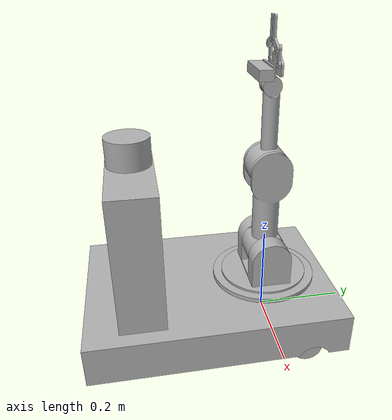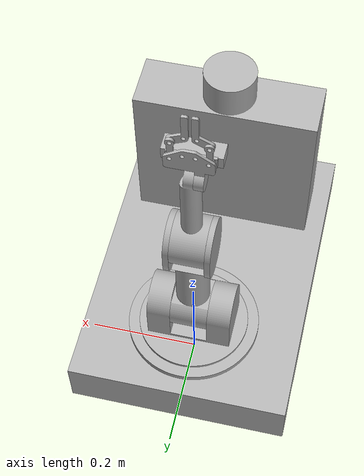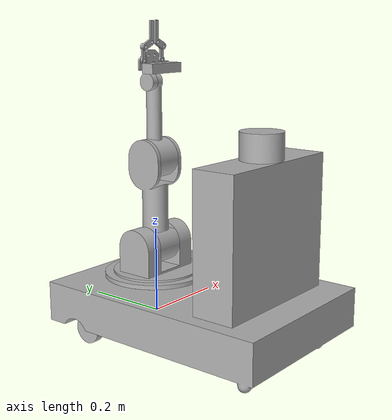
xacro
<?xml version="1.0"?>
<robot xmlns:xacro="http://www.ros.org/wiki/xacro" name="capstone_design">
    <xacro:arg name="initial_positions_file" default="initial_positions.yaml" />

    <!-- Import capstone_design urdf file -->
    <xacro:include filename="$(find capstone_design_description)/urdf/capstone_design.xacro" />

    <!-- Import control_xacro -->
    <xacro:include filename="capstone_design.ros2_control.xacro" />

    <xacro:capstone_design_ros2_control name="FakeSystem" initial_positions_file="$(arg initial_positions_file)"/>

</robot>

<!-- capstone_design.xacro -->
<robot name="capstone_design" xmlns:xacro="http://www.ros.org/wiki/xacro">

<xacro:include filename="$(find capstone_design_description)/urdf/materials.xacro" />
<xacro:include filename="$(find capstone_design_description)/urdf/capstone_design.trans" />
<xacro:include filename="$(find capstone_design_description)/urdf/capstone_design.gazebo" />
<link name="base_link">
  <inertial>
    <origin xyz="0.0 -0.18760221512473715 0.11026773981655406" rpy="0 0 0"/>
    <mass value="244.42049863775813"/>
    <inertia ixx="8.801276" iyy="5.776252" izz="8.8371" ixy="0.0" iyz="1.716086" ixz="0.0"/>
  </inertial>
  <visual>
    <origin xyz="0 0 0" rpy="0 0 0"/>
    <geometry>
      <mesh filename="file://$(find capstone_design_description)/meshes/base_link.stl" scale="0.001 0.001 0.001"/>
    </geometry>
    <material name="silver"/>
  </visual>
  <collision>
    <origin xyz="0 0 0" rpy="0 0 0"/>
    <geometry>
      <mesh filename="file://$(find capstone_design_description)/meshes/base_link.stl" scale="0.001 0.001 0.001"/>
    </geometry>
  </collision>
</link>

<link name="arm_base_link_1">
  <inertial>
    <origin xyz="4.020849375084743e-17 0.0 0.0049999999999999906" rpy="0 0 0"/>
    <mass value="3.551256335617901"/>
    <inertia ixx="0.012814" iyy="0.012814" izz="0.025569" ixy="0.0" iyz="0.0" ixz="0.0"/>
  </inertial>
  <visual>
    <origin xyz="-0.0 -0.0 -0.0918" rpy="0 0 0"/>
    <geometry>
      <mesh filename="file://$(find capstone_design_description)/meshes/arm_base_link_1.stl" scale="0.001 0.001 0.001"/>
    </geometry>
    <material name="silver"/>
  </visual>
  <collision>
    <origin xyz="-0.0 -0.0 -0.0918" rpy="0 0 0"/>
    <geometry>
      <mesh filename="file://$(find capstone_design_description)/meshes/arm_base_link_1.stl" scale="0.001 0.001 0.001"/>
    </geometry>
  </collision>
</link>

<link name="link1_1">
  <inertial>
    <origin xyz="2.0030450291854913e-17 2.0030450291854907e-17 0.04290880959465923" rpy="0 0 0"/>
    <mass value="7.128679889758317"/>
    <inertia ixx="0.014169" iyy="0.028332" izz="0.02758" ixy="-0.0" iyz="0.0" ixz="0.0"/>
  </inertial>
  <visual>
    <origin xyz="-0.0 -0.0 -0.1018" rpy="0 0 0"/>
    <geometry>
      <mesh filename="file://$(find capstone_design_description)/meshes/link1_1.stl" scale="0.001 0.001 0.001"/>
    </geometry>
    <material name="silver"/>
  </visual>
  <collision>
    <origin xyz="-0.0 -0.0 -0.1018" rpy="0 0 0"/>
    <geometry>
      <mesh filename="file://$(find capstone_design_description)/meshes/link1_1.stl" scale="0.001 0.001 0.001"/>
    </geometry>
  </collision>
</link>

<link name="link2_1">
  <inertial>
    <origin xyz="0.03360000772838613 -8.485027970501936e-11 0.06805286707917996" rpy="0 0 0"/>
    <mass value="6.954595389355063"/>
    <inertia ixx="0.045406" iyy="0.045852" izz="0.00637" ixy="-0.0" iyz="0.0" ixz="-0.0"/>
  </inertial>
  <visual>
    <origin xyz="0.0336 -0.0 -0.1668" rpy="0 0 0"/>
    <geometry>
      <mesh filename="file://$(find capstone_design_description)/meshes/link2_1.stl" scale="0.001 0.001 0.001"/>
    </geometry>
    <material name="silver"/>
  </visual>
  <collision>
    <origin xyz="0.0336 -0.0 -0.1668" rpy="0 0 0"/>
    <geometry>
      <mesh filename="file://$(find capstone_design_description)/meshes/link2_1.stl" scale="0.001 0.001 0.001"/>
    </geometry>
  </collision>
</link>

<link name="link3_1">
  <inertial>
    <origin xyz="0.030000023541393757 4.114813245135107e-18 0.02802505675959771" rpy="0 0 0"/>
    <mass value="3.999606826289236"/>
    <inertia ixx="0.014123" iyy="0.013491" izz="0.002566" ixy="0.0" iyz="-0.0" ixz="-0.0"/>
  </inertial>
  <visual>
    <origin xyz="0.03 -0.0 -0.370357" rpy="0 0 0"/>
    <geometry>
      <mesh filename="file://$(find capstone_design_description)/meshes/link3_1.stl" scale="0.001 0.001 0.001"/>
    </geometry>
    <material name="silver"/>
  </visual>
  <collision>
    <origin xyz="0.03 -0.0 -0.370357" rpy="0 0 0"/>
    <geometry>
      <mesh filename="file://$(find capstone_design_description)/meshes/link3_1.stl" scale="0.001 0.001 0.001"/>
    </geometry>
  </collision>
</link>

<link name="hand_link_1">
  <inertial>
    <origin xyz="3.255267775751497e-05 0.0010470921107968664 0.021378963563369324" rpy="0 0 0"/>
    <mass value="0.34655707869237173"/>
    <inertia ixx="0.0002" iyy="0.000282" izz="0.000135" ixy="-3e-06" iyz="-1.2e-05" ixz="-5.4e-05"/>
  </inertial>
  <visual>
    <origin xyz="0.008 -0.0 -0.544257" rpy="0 0 0"/>
    <geometry>
      <mesh filename="file://$(find capstone_design_description)/meshes/hand_link_1.stl" scale="0.001 0.001 0.001"/>
    </geometry>
    <material name="silver"/>
  </visual>
  <collision>
    <origin xyz="0.008 -0.0 -0.544257" rpy="0 0 0"/>
    <geometry>
      <mesh filename="file://$(find capstone_design_description)/meshes/hand_link_1.stl" scale="0.001 0.001 0.001"/>
    </geometry>
  </collision>
</link>

<link name="left_gripper_link_1">
  <inertial>
    <origin xyz="-6.42194630806614e-14 -0.002499999999999998 0.014999999999971148" rpy="0 0 0"/>
    <mass value="0.01720971564055042"/>
    <inertia ixx="3e-06" iyy="3e-06" izz="0.0" ixy="-0.0" iyz="-0.0" ixz="0.0"/>
  </inertial>
  <visual>
    <origin xyz="0.03 -0.005 -0.591757" rpy="0 0 0"/>
    <geometry>
      <mesh filename="file://$(find capstone_design_description)/meshes/left_gripper_link_1.stl" scale="0.001 0.001 0.001"/>
    </geometry>
    <material name="silver"/>
  </visual>
  <collision>
    <origin xyz="0.03 -0.005 -0.591757" rpy="0 0 0"/>
    <geometry>
      <mesh filename="file://$(find capstone_design_description)/meshes/left_gripper_link_1.stl" scale="0.001 0.001 0.001"/>
    </geometry>
  </collision>
</link>

<link name="right_gripper_link_1">
  <inertial>
    <origin xyz="-6.42715047849407e-14 -0.002499999999999998 0.014999999999970925" rpy="0 0 0"/>
    <mass value="0.01720971564055051"/>
    <inertia ixx="3e-06" iyy="3e-06" izz="0.0" ixy="0.0" iyz="-0.0" ixz="0.0"/>
  </inertial>
  <visual>
    <origin xyz="-0.03 -0.005 -0.591757" rpy="0 0 0"/>
    <geometry>
      <mesh filename="file://$(find capstone_design_description)/meshes/right_gripper_link_1.stl" scale="0.001 0.001 0.001"/>
    </geometry>
    <material name="silver"/>
  </visual>
  <collision>
    <origin xyz="-0.03 -0.005 -0.591757" rpy="0 0 0"/>
    <geometry>
      <mesh filename="file://$(find capstone_design_description)/meshes/right_gripper_link_1.stl" scale="0.001 0.001 0.001"/>
    </geometry>
  </collision>
</link>

<link name="left_finger_1">
  <inertial>
    <origin xyz="0.01613904694023681 -0.002499999999999998 0.020996703413204365" rpy="0 0 0"/>
    <mass value="0.03447696599229279"/>
    <inertia ixx="1.2e-05" iyy="1.5e-05" izz="3e-06" ixy="-0.0" iyz="0.0" ixz="-4e-06"/>
  </inertial>
  <visual>
    <origin xyz="0.03 -0.0 -0.621757" rpy="0 0 0"/>
    <geometry>
      <mesh filename="file://$(find capstone_design_description)/meshes/left_finger_1.stl" scale="0.001 0.001 0.001"/>
    </geometry>
    <material name="silver"/>
  </visual>
  <collision>
    <origin xyz="0.03 -0.0 -0.621757" rpy="0 0 0"/>
    <geometry>
      <mesh filename="file://$(find capstone_design_description)/meshes/left_finger_1.stl" scale="0.001 0.001 0.001"/>
    </geometry>
  </collision>
</link>

<link name="right_finger_1">
  <inertial>
    <origin xyz="-0.01613904694030094 -0.002499999999999998 0.020996703413204365" rpy="0 0 0"/>
    <mass value="0.034476965992292836"/>
    <inertia ixx="1.2e-05" iyy="1.5e-05" izz="3e-06" ixy="0.0" iyz="0.0" ixz="4e-06"/>
  </inertial>
  <visual>
    <origin xyz="-0.03 -0.0 -0.621757" rpy="0 0 0"/>
    <geometry>
      <mesh filename="file://$(find capstone_design_description)/meshes/right_finger_1.stl" scale="0.001 0.001 0.001"/>
    </geometry>
    <material name="silver"/>
  </visual>
  <collision>
    <origin xyz="-0.03 -0.0 -0.621757" rpy="0 0 0"/>
    <geometry>
      <mesh filename="file://$(find capstone_design_description)/meshes/right_finger_1.stl" scale="0.001 0.001 0.001"/>
    </geometry>
  </collision>
</link>

<link name="right_wheel_1">
  <inertial>
    <origin xyz="0.009299999999999975 -1.3877787807814457e-17 3.469446951953614e-18" rpy="0 0 0"/>
    <mass value="0.49952859430885366"/>
    <inertia ixx="0.000272" iyy="0.00015" izz="0.00015" ixy="-0.0" iyz="0.0" ixz="0.0"/>
  </inertial>
  <visual>
    <origin xyz="-0.1435 -0.07 0.017" rpy="0 0 0"/>
    <geometry>
      <mesh filename="file://$(find capstone_design_description)/meshes/right_wheel_1.stl" scale="0.001 0.001 0.001"/>
    </geometry>
    <material name="silver"/>
  </visual>
  <collision>
    <origin xyz="-0.1435 -0.07 0.017" rpy="0 0 0"/>
    <geometry>
      <mesh filename="file://$(find capstone_design_description)/meshes/right_wheel_1.stl" scale="0.001 0.001 0.001"/>
    </geometry>
  </collision>
</link>

<link name="left_wheel_1">
  <inertial>
    <origin xyz="-0.009300000000000003 0.0 -1.0408340855860843e-17" rpy="0 0 0"/>
    <mass value="0.4995285943088536"/>
    <inertia ixx="0.000272" iyy="0.00015" izz="0.00015" ixy="0.0" iyz="-0.0" ixz="-0.0"/>
  </inertial>
  <visual>
    <origin xyz="0.1435 -0.07 0.017" rpy="0 0 0"/>
    <geometry>
      <mesh filename="file://$(find capstone_design_description)/meshes/left_wheel_1.stl" scale="0.001 0.001 0.001"/>
    </geometry>
    <material name="silver"/>
  </visual>
  <collision>
    <origin xyz="0.1435 -0.07 0.017" rpy="0 0 0"/>
    <geometry>
      <mesh filename="file://$(find capstone_design_description)/meshes/left_wheel_1.stl" scale="0.001 0.001 0.001"/>
    </geometry>
  </collision>
</link>

<link name="lidar_1">
  <inertial>
    <origin xyz="1.06925634351284e-17 -5.551115123125783e-17 0.030000000000000027" rpy="0 0 0"/>
    <mass value="3.3385508780157878"/>
    <inertia ixx="0.002885" iyy="0.002885" izz="0.003766" ixy="0.0" iyz="0.0" ixz="0.0"/>
  </inertial>
  <visual>
    <origin xyz="-0.0 0.296 -0.3977" rpy="0 0 0"/>
    <geometry>
      <mesh filename="file://$(find capstone_design_description)/meshes/lidar_1.stl" scale="0.001 0.001 0.001"/>
    </geometry>
    <material name="silver"/>
  </visual>
  <collision>
    <origin xyz="-0.0 0.296 -0.3977" rpy="0 0 0"/>
    <geometry>
      <mesh filename="file://$(find capstone_design_description)/meshes/lidar_1.stl" scale="0.001 0.001 0.001"/>
    </geometry>
  </collision>
</link>

<link name="stereo_camera_1">
  <inertial>
    <origin xyz="0.0 -0.01499999999999999 2.5403783909805355e-07" rpy="0 0 0"/>
    <mass value="0.5025570000000006"/>
    <inertia ixx="5.8e-05" iyy="0.000414" izz="0.000432" ixy="0.0" iyz="0.0" ixz="0.0"/>
  </inertial>
  <visual>
    <origin xyz="-0.0 0.01 -0.575417" rpy="0 0 0"/>
    <geometry>
      <mesh filename="file://$(find capstone_design_description)/meshes/stereo_camera_1.stl" scale="0.001 0.001 0.001"/>
    </geometry>
    <material name="silver"/>
  </visual>
  <collision>
    <origin xyz="-0.0 0.01 -0.575417" rpy="0 0 0"/>
    <geometry>
      <mesh filename="file://$(find capstone_design_description)/meshes/stereo_camera_1.stl" scale="0.001 0.001 0.001"/>
    </geometry>
  </collision>
</link>

<joint name="base_link_to_arm_base_link" type="revolute">
  <origin xyz="0.0 0.0 0.0918" rpy="0 0 0"/>
  <parent link="base_link"/>
  <child link="arm_base_link_1"/>
  <axis xyz="0.0 0.0 1.0"/>
  <limit upper="1.570796" lower="-1.570796" effort="100" velocity="100"/>
</joint>

<joint name="arm_base_link_to_link1" type="fixed">
  <origin xyz="0.0 0.0 0.01" rpy="0 0 0"/>
  <parent link="arm_base_link_1"/>
  <child link="link1_1"/>
</joint>

<joint name="link1_to_link2" type="revolute">
  <origin xyz="-0.0336 0.0 0.065" rpy="0 0 0"/>
  <parent link="link1_1"/>
  <child link="link2_1"/>
  <axis xyz="-1.0 0.0 0.0"/>
  <limit upper="1.570796" lower="-1.570796" effort="100" velocity="100"/>
</joint>

<joint name="link2_to_link3" type="revolute">
  <origin xyz="0.0036 0.0 0.203557" rpy="0 0 0"/>
  <parent link="link2_1"/>
  <child link="link3_1"/>
  <axis xyz="-1.0 0.0 0.0"/>
  <limit upper="1.570796" lower="-1.570796" effort="100" velocity="100"/>
</joint>

<joint name="link3_to_hand_link" type="revolute">
  <origin xyz="0.022 0.0 0.1739" rpy="0 0 0"/>
  <parent link="link3_1"/>
  <child link="hand_link_1"/>
  <axis xyz="-1.0 0.0 0.0"/>
  <limit upper="1.570796" lower="-1.570796" effort="100" velocity="100"/>
</joint>

<joint name="hand_link_to_left_gripper_link" type="revolute">
  <origin xyz="-0.022 0.005 0.0475" rpy="0 0 0"/>
  <parent link="hand_link_1"/>
  <child link="left_gripper_link_1"/>
  <axis xyz="0.0 1.0 -0.0"/>
  <limit upper="0.0" lower="-1.22173" effort="100" velocity="100"/>
</joint>

<joint name="hand_link_to_right_gripper_link" type="revolute">
  <origin xyz="0.038 0.005 0.0475" rpy="0 0 0"/>
  <parent link="hand_link_1"/>
  <child link="right_gripper_link_1"/>
  <axis xyz="0.0 1.0 -0.0"/>
  <mimic joint="hand_link_to_left_gripper_link" multiplier="-1.0" offset="0.0"/>
  <limit upper="1.22173" lower="0.0" effort="100" velocity="100"/>
</joint>

<joint name="left_gripper_link_to_left_finger" type="revolute">
  <origin xyz="0.0 -0.005 0.03" rpy="0 0 0"/>
  <parent link="left_gripper_link_1"/>
  <child link="left_finger_1"/>
  <axis xyz="0.0 1.0 0.0"/>
  <mimic joint="hand_link_to_left_gripper_link" multiplier="-1.0" offset="0.0"/>
  <limit upper="1.22173" lower="0.0" effort="100" velocity="100"/>
</joint>

<joint name="right_gripper_link_to_right_finger" type="revolute">
  <origin xyz="0.0 -0.005 0.03" rpy="0 0 0"/>
  <parent link="right_gripper_link_1"/>
  <child link="right_finger_1"/>
  <axis xyz="0.0 1.0 0.0"/>
  <mimic joint="hand_link_to_left_gripper_link" multiplier="1.0" offset="0.0"/>
  <limit upper="0.0" lower="-1.22173" effort="100" velocity="100"/>
</joint>

<joint name="right_wheel" type="continuous">
  <origin xyz="0.1435 0.07 -0.017" rpy="0 0 0"/>
  <parent link="base_link"/>
  <child link="right_wheel_1"/>
  <axis xyz="1.0 0.0 0.0"/>
</joint>

<joint name="left_wheel" type="continuous">
  <origin xyz="-0.1435 0.07 -0.017" rpy="0 0 0"/>
  <parent link="base_link"/>
  <child link="left_wheel_1"/>
  <axis xyz="-1.0 0.0 0.0"/>
</joint>

<joint name="lidar" type="fixed">
  <origin xyz="0.0 -0.296 0.3977" rpy="0 0 0"/>
  <parent link="base_link"/>
  <child link="lidar_1"/>
</joint>

<joint name="camera" type="fixed">
  <origin xyz="0.008 -0.01 0.03116" rpy="0 0 0"/>
  <parent link="hand_link_1"/>
  <child link="stereo_camera_1"/>
</joint>

</robot>

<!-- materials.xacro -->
<robot name="capstone_design" xmlns:xacro="http://www.ros.org/wiki/xacro" >

<material name="silver">
  <color rgba="0.700 0.700 0.700 1.000"/>
</material>

</robot>

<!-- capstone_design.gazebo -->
<robot name="capstone_design" xmlns:xacro="http://www.ros.org/wiki/xacro" >

<xacro:property name="body_color" value="Gazebo/Silver" />

<gazebo>
  <plugin name="control" filename="libgazebo_ros_control.so"/>
</gazebo>
<gazebo reference="base_link">
  <material>${body_color}</material>
  <mu1>0.2</mu1>
  <mu2>0.2</mu2>
  <self_collide>true</self_collide>
  <gravity>true</gravity>
</gazebo>

<gazebo reference="link1_1">
  <material>${body_color}</material>
  <mu1>0.2</mu1>
  <mu2>0.2</mu2>
  <self_collide>true</self_collide>
</gazebo>

<gazebo reference="link2_1">
  <material>${body_color}</material>
  <mu1>0.2</mu1>
  <mu2>0.2</mu2>
  <self_collide>true</self_collide>
</gazebo>

<gazebo reference="link3_1">
  <material>${body_color}</material>
  <mu1>0.2</mu1>
  <mu2>0.2</mu2>
  <self_collide>true</self_collide>
</gazebo>

<gazebo reference="hand_link_1">
  <material>${body_color}</material>
  <mu1>0.2</mu1>
  <mu2>0.2</mu2>
  <self_collide>true</self_collide>
</gazebo>

<gazebo reference="left_gripper_link_1">
  <material>${body_color}</material>
  <mu1>0.2</mu1>
  <mu2>0.2</mu2>
  <self_collide>true</self_collide>
</gazebo>

<gazebo reference="right_gripper_link_1">
  <material>${body_color}</material>
  <mu1>0.2</mu1>
  <mu2>0.2</mu2>
  <self_collide>true</self_collide>
</gazebo>

<gazebo reference="left_finger_1">
  <material>${body_color}</material>
  <mu1>0.2</mu1>
  <mu2>0.2</mu2>
  <self_collide>true</self_collide>
</gazebo>

<gazebo reference="right_finger_1">
  <material>${body_color}</material>
  <mu1>0.2</mu1>
  <mu2>0.2</mu2>
  <self_collide>true</self_collide>
</gazebo>

<gazebo reference="right_wheel_1">
  <material>${body_color}</material>
  <mu1>0.2</mu1>
  <mu2>0.2</mu2>
  <self_collide>true</self_collide>
</gazebo>

<gazebo reference="left_wheel_1">
  <material>${body_color}</material>
  <mu1>0.2</mu1>
  <mu2>0.2</mu2>
  <self_collide>true</self_collide>
</gazebo>

<gazebo reference="lidar_1">
  <material>${body_color}</material>
  <mu1>0.2</mu1>
  <mu2>0.2</mu2>
  <self_collide>true</self_collide>
</gazebo>

<gazebo reference="arm_base_link_1">
  <material>${body_color}</material>
  <mu1>0.2</mu1>
  <mu2>0.2</mu2>
  <self_collide>true</self_collide>
</gazebo>

<gazebo reference="stereo_camera_1">
  <material>${body_color}</material>
  <mu1>0.2</mu1>
  <mu2>0.2</mu2>
  <self_collide>true</self_collide>
</gazebo>

</robot>
